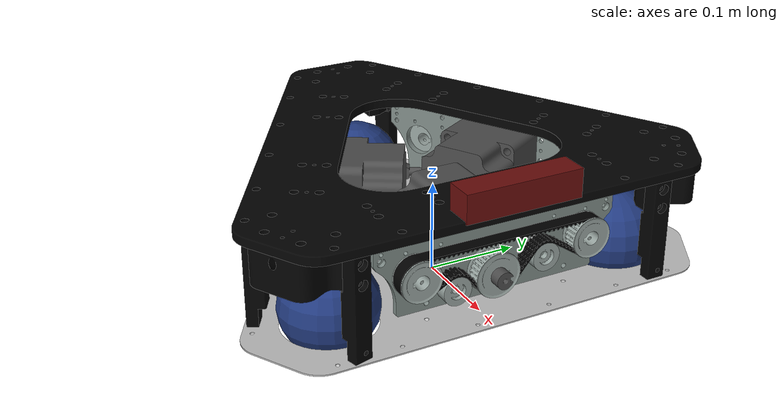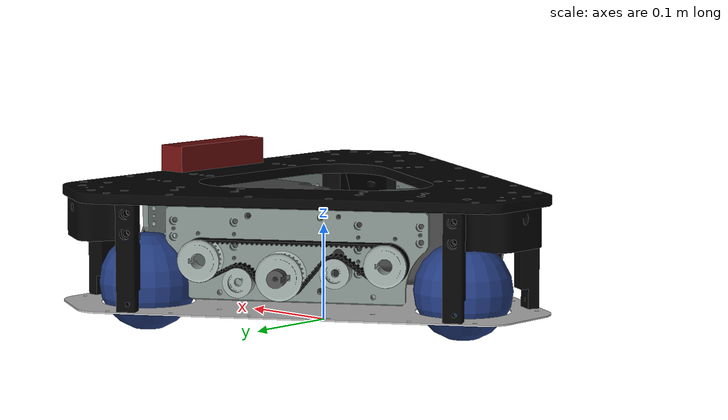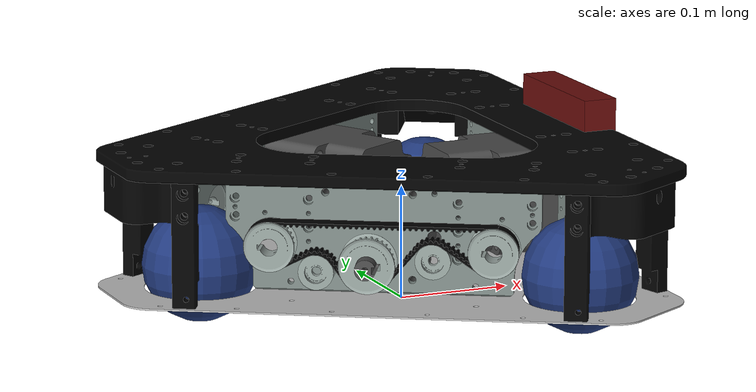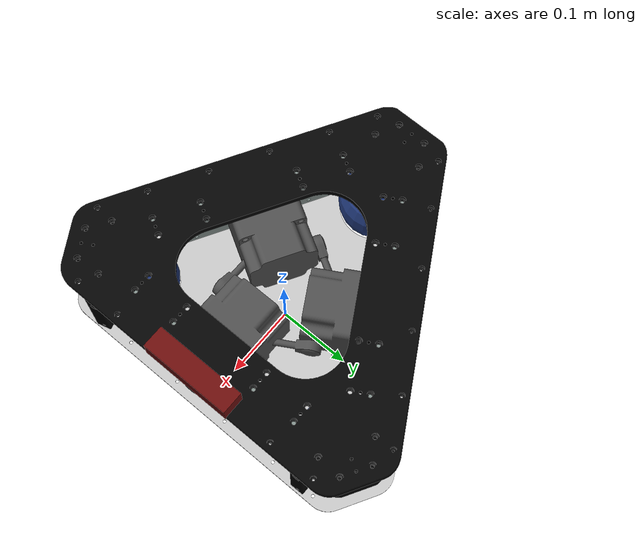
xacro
<?xml version="1.0" ?>
<robot name="TriOrb300P100" xmlns:xacro="http://ros.org/wiki/xacro">

  <xacro:include filename="$(find warehouse_robot_sim)/urdf/oakd.urdf.xacro"/>
  <xacro:include filename="$(find warehouse_robot_sim)/urdf/omni_controller.urdf.xacro" />

<link name="base_link">

</link>
  <link name="robot_base">
    <inertial>
      <origin xyz="0 0 0" rpy="0 0 0"/>
      <mass value="1.0"/>
      <inertia ixx="1.0" ixy="0.0" ixz="0.0" iyy="1.0" iyz="0.0" izz="1.0"/>
    </inertial>
    <visual name="TriOrb300P100_UnderPlate_visual">
        <origin xyz="0.0 0.0 0.0" rpy="0.0 0.0 0.0" />
        <geometry>
            <mesh filename="file://$(find warehouse_robot_sim)/meshes/TriOrb300P100_UnderPlate.stl" scale="0.001 0.001 0.001" />
        </geometry>
        <material name="sus">
            <color rgba="0.753 0.753 0.753 1.0"/>
        </material>
    </visual>
    <collision name="TriOrb300P100_UnderPlate_collision">
        <origin xyz="0.0 0.0 0.0" rpy="0.0 0.0 0.0" />
        <geometry>
            <mesh filename="file://$(find warehouse_robot_sim)/meshes/TriOrb300P100_UnderPlate.stl" scale="0.001 0.001 0.001" />
        </geometry>
    </collision>
  </link>

<joint name="base_joint" type="fixed">
    <origin xyz="0.0 0.0 0.0" rpy="0.0 0.0 1.57"/>
    <parent link="base_link"/>
    <child link="robot_base"/>
 </joint>

  <link name="TriOrb300P100_TopPlate">
    <inertial>
        <origin xyz="1.5137191669958588e-13 -0.0002619661940188339 0.14268613534243857" rpy="0.0 -0.0 0.0" />
        <mass value="8.182272397574748" />
        <inertia ixx="0.13232877336076157" iyy="0.13289875477595392" izz="0.2650914872635593" ixy="4.4043453928310243e-14" iyz="5.610845970076186e-08" ixz="7.989679922409314e-17" />
    </inertial>
    <visual name="TriOrb300P100_TopPlate_visual">
        <origin xyz="0.0 0.0 0.0" rpy="0.0 -0.0 0.0" />
        <geometry>
            <mesh filename="file://$(find warehouse_robot_sim)/meshes/TriOrb300P100_TopPlate.stl" scale="0.001 0.001 0.001" />
        </geometry>
        <material name="dark_gray">
            <color rgba="0.01 0.01 0.01 1.0"/>
        </material>
    </visual>
    <collision name="TriOrb300P100_TopPlate_collision">
        <origin xyz="0.0 0.0 0.0" rpy="0.0 -0.0 0.0" />
        <geometry>
            <mesh filename="file://$(find warehouse_robot_sim)/meshes/TriOrb300P100_TopPlate.stl" scale="0.001 0.001 0.001" />
        </geometry>
    </collision>
  </link>

  <joint name="TriOrb300P100_TopPlate_joint" type="fixed">
    <parent link="robot_base"/>
    <child link="TriOrb300P100_TopPlate"/>
    <origin xyz="0 0 0" rpy="0 0 0"/>
  </joint>

  <link name="TriOrb300P100_Ball100_1">
    <inertial>
        <origin xyz="0 0 0" rpy="0 0 0" />
        <mass value="0.01" />
        <inertia ixx="0.0001" ixy="0.0" ixz="0.0" iyy="0.0001" iyz="0.0" izz="0.0001" />
    </inertial>
    <visual>
        <geometry>
            <sphere radius="0.05"/>
        </geometry>
        <origin xyz="0 0.187 0.05" rpy="0 0 0"/>
        <material name="triorb_blue">
            <color rgba="0.1333333333333333 0.2313725490196078 0.5019607843137255 1.0"/>
        </material>
    </visual>
    <collision>
        <geometry>
            <sphere radius="0.05"/>
        </geometry>
        <origin xyz="0 0.187 0.05" rpy="0 0 0"/>
    </collision>
  </link>

  <joint name="TriOrb300P100_Ball100_1_joint" type="fixed">
    <parent link="robot_base"/>
    <child link="TriOrb300P100_Ball100_1"/>
    <origin xyz="0 0 0" rpy="0 0 0"/>
  </joint>

  <link name="TriOrb300P100_Ball100_2">
    <inertial>
        <origin xyz="0 0 0" rpy="0 0 0" />
        <mass value="0.01" />
        <inertia ixx="0.0001" ixy="0.0" ixz="0.0" iyy="0.0001" iyz="0.0" izz="0.0001" />
    </inertial>
    <visual>
        <geometry>
            <sphere radius="0.05"/>
        </geometry>
        <origin xyz="0.162 -0.094 0.05" rpy="0 0 0"/>
        <material name="triorb_blue">
            <color rgba="0.1333333333333333 0.2313725490196078 0.5019607843137255 1.0"/>
        </material>
    </visual>
    <collision>
        <geometry>
            <sphere radius="0.05"/>
        </geometry>
        <origin xyz="0.162 -0.094 0.05" rpy="0 0 0"/>
    </collision>
  </link>

  <link name="TriOrb300P100_Ball100_3">
    <inertial>
        <origin xyz="0 0 0" rpy="0 0 0" />
        <mass value="0.01" />
        <inertia ixx="0.0001" ixy="0.0" ixz="0.0" iyy="0.0001" iyz="0.0" izz="0.0001" />
    </inertial>
    <visual>
        <geometry>
            <sphere radius="0.05"/>
        </geometry>
        <origin xyz="-0.162 -0.094 0.05" rpy="0 0 0"/>
        <material name="triorb_blue">
            <color rgba="0.1333333333333333 0.2313725490196078 0.5019607843137255 1.0"/>
        </material>
    </visual>
    <collision>
        <geometry>
            <sphere radius="0.05"/>
        </geometry>
        <origin xyz="-0.162 -0.094 0.05" rpy="0 0 0"/>
    </collision>
  </link>

  <joint name="TriOrb300P100_Ball100_2_joint" type="fixed">
    <parent link="robot_base"/>
    <child link="TriOrb300P100_Ball100_2"/>
    <origin xyz="0 0 0" rpy="0 0 0"/>
  </joint>

  <joint name="TriOrb300P100_Ball100_3_joint" type="fixed">
    <parent link="robot_base"/>
    <child link="TriOrb300P100_Ball100_3"/>
    <origin xyz="0 0 0" rpy="0 0 0"/>
  </joint>

  <link name="TriOrb300P100_PlateA_PlateA-1">
    <inertial>
        <mass value="0.39569212966450507" />
        <inertia ixx="0.0001" ixy="0.0" ixz="0.0" iyy="0.0001" iyz="0.0" izz="0.0001" />
    </inertial>
    <visual name="TriOrb300P100_PlateA_PlateA-1_visual">
        <origin xyz="0.0 -0.131 0.064" rpy="1.5708 0.0 0.0" />
        <geometry>
            <mesh filename="file://$(find warehouse_robot_sim)/meshes/TriOrb300P100_PlateA_PlateA-1.stl" scale="0.001 0.001 0.001" />
        </geometry>
        <material name="aluminum">
            <color rgba="0.5 0.5490196078431373 0.5333333333333333 1.0"/>
        </material>
    </visual>
    <collision name="TriOrb300P100_PlateA_PlateA-1_collision">
        <origin xyz="0.0 -0.131 0.064" rpy="1.5708 0.0 0.0" />
        <geometry>
            <mesh filename="file://$(find warehouse_robot_sim)/meshes/TriOrb300P100_PlateA_PlateA-1.stl" scale="0.001 0.001 0.001" />
        </geometry>
    </collision>
  </link>

  <joint name="TriOrb300P100_PlateA_PlateA-1_joint" type="fixed">
    <parent link="robot_base"/>
    <child link="TriOrb300P100_PlateA_PlateA-1"/>
    <origin xyz="0 0 0" rpy="0 0 0"/>
  </joint>

  <link name="TriOrb300P100_PlateA_PlateA-2">
    <inertial>
        <mass value="0.39569212966450507" />
        <inertia ixx="0.0001" ixy="0.0" ixz="0.0" iyy="0.0001" iyz="0.0" izz="0.0001" />
    </inertial>
    <visual name="TriOrb300P100_PlateA_PlateA-2_visual">
        <origin xyz="0.115 0.067 0.064" rpy="1.5708 0.0 2.0944" />
        <geometry>
            <mesh filename="file://$(find warehouse_robot_sim)/meshes/TriOrb300P100_PlateA_PlateA-1.stl" scale="0.001 0.001 0.001" />
        </geometry>
        <material name="aluminum">
            <color rgba="0.5 0.5490196078431373 0.5333333333333333 1.0"/>
        </material>
    </visual>
    <collision name="TriOrb300P100_PlateA_PlateA-2_collision">
        <origin xyz="0.115 0.067 0.064" rpy="1.5708 0.0 2.0944" />
        <geometry>
            <mesh filename="file://$(find warehouse_robot_sim)/meshes/TriOrb300P100_PlateA_PlateA-1.stl" scale="0.001 0.001 0.001" />
        </geometry>
    </collision>
  </link>

  <link name="TriOrb300P100_PlateA_PlateA-3">
    <inertial>
        <mass value="0.39569212966450507" />
        <inertia ixx="0.0001" ixy="0.0" ixz="0.0" iyy="0.0001" iyz="0.0" izz="0.0001" />
    </inertial>
    <visual name="TriOrb300P100_PlateA_PlateA-3_visual">
        <origin xyz="-0.115 0.067 0.064" rpy="1.5708 0.0 -2.0944" />
        <geometry>
            <mesh filename="file://$(find warehouse_robot_sim)/meshes/TriOrb300P100_PlateA_PlateA-1.stl" scale="0.001 0.001 0.001" />
        </geometry>
        <material name="aluminum">
            <color rgba="0.5 0.5490196078431373 0.5333333333333333 1.0"/>
        </material>
    </visual>
    <collision name="TriOrb300P100_PlateA_PlateA-3_collision">
        <origin xyz="-0.115 0.067 0.064" rpy="1.5708 0.0 -2.0944" />
        <geometry>
            <mesh filename="file://$(find warehouse_robot_sim)/meshes/TriOrb300P100_PlateA_PlateA-1.stl" scale="0.001 0.001 0.001" />
        </geometry>
    </collision>
  </link>

  <joint name="TriOrb300P100_PlateA_PlateA-2_joint" type="fixed">
    <parent link="robot_base"/>
    <child link="TriOrb300P100_PlateA_PlateA-2"/>
    <origin xyz="0 0 0" rpy="0 0 0"/>
  </joint>

  <joint name="TriOrb300P100_PlateA_PlateA-3_joint" type="fixed">
    <parent link="robot_base"/>
    <child link="TriOrb300P100_PlateA_PlateA-3"/>
    <origin xyz="0 0 0" rpy="0 0 0"/>
  </joint>

  <link name="TriOrb300P100_Casters_BlockC_BlockC1">
        <inertial>
            <origin xyz="0.010662803863432657 -2.8483899861735884e-17 0.017741942156625452" rpy="0.0 0.0 0.0" />
            <mass value="0.3037934076706409" />
            <inertia ixx="0.0002919184975503147" iyy="0.00013238224619031153" izz="0.00034633195984139567" ixy="-1.4393625169522927e-20" iyz="1.6440207248356923e-20" ixz="3.2592310722587975e-06" />
        </inertial>
        <visual name="TriOrb300P100_Casters_BlockC_BlockC1_visual">
            <origin xyz="0.0 0.226 0.138" rpy="0.0 3.1415 -1.5708" />
            <geometry>
                <mesh filename="file://$(find warehouse_robot_sim)/meshes/TriOrb300P100_Casters_BlockC_BlockC1.stl" scale="0.001 0.001 0.001" />
            </geometry>
            <material name="dark_gray">
                <color rgba="0.01 0.01 0.01 1.0"/>
            </material>
        </visual>
        <collision name="TriOrb300P100_Casters_BlockC_BlockC1_collision">
            <origin xyz="0.0 0.226 0.138" rpy="0.0 3.1415 -1.5708" />
            <geometry>
                <mesh filename="file://$(find warehouse_robot_sim)/meshes/TriOrb300P100_Casters_BlockC_BlockC1.stl" scale="0.001 0.001 0.001" />
            </geometry>
        </collision>
  </link>
  <link name="TriOrb300P100_Casters_BlockC_BlockC2">
        <inertial>
            <origin xyz="0.010662803863432657 -2.8483899861735884e-17 0.017741942156625452" rpy="0.0 0.0 0.0" />
            <mass value="0.3037934076706409" />
            <inertia ixx="0.0002919184975503147" iyy="0.00013238224619031153" izz="0.00034633195984139567" ixy="-1.4393625169522927e-20" iyz="1.6440207248356923e-20" ixz="3.2592310722587975e-06" />
        </inertial>
        <visual name="TriOrb300P100_Casters_BlockC_BlockC2_visual">
            <origin xyz="-0.196 -0.113 0.138" rpy="0.0 3.1415 0.521" />
            <geometry>
                <mesh filename="file://$(find warehouse_robot_sim)/meshes/TriOrb300P100_Casters_BlockC_BlockC1.stl" scale="0.001 0.001 0.001" />
            </geometry>
            <material name="dark_gray">
                <color rgba="0.01 0.01 0.01 1.0"/>
            </material>
        </visual>
        <collision name="TriOrb300P100_Casters_BlockC_BlockC2_collision">
            <origin xyz="-0.196 -0.113 0.138" rpy="0.0 3.1415 0.521" />
            <geometry>
                <mesh filename="file://$(find warehouse_robot_sim)/meshes/TriOrb300P100_Casters_BlockC_BlockC1.stl" scale="0.001 0.001 0.001" />
            </geometry>
        </collision>
  </link>
  <link name="TriOrb300P100_Casters_BlockC_BlockC3">
        <inertial>
            <origin xyz="0.010662803863432657 -2.8483899861735884e-17 0.017741942156625452" rpy="0.0 0.0 0.0" />
            <mass value="0.3037934076706409" />
            <inertia ixx="0.0002919184975503147" iyy="0.00013238224619031153" izz="0.00034633195984139567" ixy="-1.4393625169522927e-20" iyz="1.6440207248356923e-20" ixz="3.2592310722587975e-06" />
        </inertial>
        <visual name="TriOrb300P100_Casters_BlockC_BlockC3_visual">
            <origin xyz="0.196 -0.113 0.138" rpy="0.0 3.1415 2.6154" />
            <geometry>
                <mesh filename="file://$(find warehouse_robot_sim)/meshes/TriOrb300P100_Casters_BlockC_BlockC1.stl" scale="0.001 0.001 0.001" />
            </geometry>
            <material name="dark_gray">
                <color rgba="0.01 0.01 0.01 1.0"/>
            </material>
        </visual>
        <collision name="TriOrb300P100_Casters_BlockC_BlockC3_collision">
            <origin xyz="0.196 -0.113 0.138" rpy="0.0 3.1415 2.6154" />
            <geometry>
                <mesh filename="file://$(find warehouse_robot_sim)/meshes/TriOrb300P100_Casters_BlockC_BlockC1.stl" scale="0.001 0.001 0.001" />
            </geometry>
        </collision>
  </link>

  <joint name="TriOrb300P100_Casters_BlockC_BlockC1_joint" type="fixed">
    <parent link="robot_base"/>
    <child link="TriOrb300P100_Casters_BlockC_BlockC1"/>
    <origin xyz="0 0 0" rpy="0 0 0"/>
  </joint>

  <joint name="TriOrb300P100_Casters_BlockC_BlockC2_joint" type="fixed">
    <parent link="robot_base"/>
    <child link="TriOrb300P100_Casters_BlockC_BlockC2"/>
    <origin xyz="0 0 0" rpy="0 0 0"/>
  </joint>

  <joint name="TriOrb300P100_Casters_BlockC_BlockC3_joint" type="fixed">
    <parent link="robot_base"/>
    <child link="TriOrb300P100_Casters_BlockC_BlockC3"/>
    <origin xyz="0 0 0" rpy="0 0 0"/>
  </joint>

  <link name="TriOrb300P100_Casters_BlockC_Pall1a">
        <inertial>
            <origin xyz="-0.0009138193356166049 0.00010427567796962438 0.05387638922345278" rpy="0.0 0.0 0.0" />
            <mass value="0.09445431039982977" />
            <inertia ixx="8.216547802327256e-05" iyy="8.158156698468214e-05" izz="6.046042878379669e-06" ixy="-8.840108730420794e-08" iyz="3.9045571520233006e-07" ixz="8.587293505365966e-07" />
        </inertial>
        <visual name="TriOrb300P100_Casters_BlockC_Pall1a_visual">
            <origin xyz="-0.057 0.222 0.138" rpy="0 3.1415 2.617901" />
            <geometry>
                <mesh filename="file://$(find warehouse_robot_sim)/meshes/TriOrb300P100_Casters_BlockC_Pall.stl" scale="0.001 0.001 0.001" />
            </geometry>
            <material name="dark_gray">
                <color rgba="0.01 0.01 0.01 1.0"/>
            </material>
        </visual>
        <collision name="TriOrb300P100_Casters_BlockC_Pall1a_collision">
            <origin xyz="-0.057 0.222 0.138" rpy="0 3.1415 2.617901" />
            <geometry>
                <mesh filename="file://$(find warehouse_robot_sim)/meshes/TriOrb300P100_Casters_BlockC_Pall.stl" scale="0.001 0.001 0.001" />
            </geometry>
        </collision>
  </link>
  <link name="TriOrb300P100_Casters_BlockC_Pall1b">
        <inertial>
            <origin xyz="-0.0009138193356166049 0.00010427567796962438 0.05387638922345278" rpy="0.0 0.0 0.0" />
            <mass value="0.09445431039982977" />
            <inertia ixx="8.216547802327256e-05" iyy="8.158156698468214e-05" izz="6.046042878379669e-06" ixy="-8.840108730420794e-08" iyz="3.9045571520233006e-07" ixz="8.587293505365966e-07" />
        </inertial>
        <visual name="TriOrb300P100_Casters_BlockC_Pall1b_visual">
            <origin xyz="0.057 0.222 0.138" rpy="0 3.1415 0.523599" />
            <geometry>
                <mesh filename="file://$(find warehouse_robot_sim)/meshes/TriOrb300P100_Casters_BlockC_Pall.stl" scale="0.001 0.001 0.001" />
            </geometry>
            <material name="dark_gray">
                <color rgba="0.01 0.01 0.01 1.0"/>
            </material>
        </visual>
        <collision name="TriOrb300P100_Casters_BlockC_Pall1b_collision">
            <origin xyz="0.057 0.222 0.138" rpy="0 3.1415 0.523599" />
            <geometry>
                <mesh filename="file://$(find warehouse_robot_sim)/meshes/TriOrb300P100_Casters_BlockC_Pall.stl" scale="0.001 0.001 0.001" />
            </geometry>
        </collision>
  </link>
  <link name="TriOrb300P100_Casters_BlockC_Pall2a">
        <inertial>
            <origin xyz="-0.0009138193356166049 0.00010427567796962438 0.05387638922345278" rpy="0.0 0.0 0.0" />
            <mass value="0.09445431039982977" />
            <inertia ixx="8.216547802327256e-05" iyy="8.158156698468214e-05" izz="6.046042878379669e-06" ixy="-8.840108730420794e-08" iyz="3.9045571520233006e-07" ixz="8.587293505365966e-07" />
        </inertial>
        <visual name="TriOrb300P100_Casters_BlockC_Pall2a_visual">
            <origin xyz="0.221 -0.062 0.138" rpy="0 3.1415 0.521" />
            <geometry>
                <mesh filename="file://$(find warehouse_robot_sim)/meshes/TriOrb300P100_Casters_BlockC_Pall.stl" scale="0.001 0.001 0.001" />
            </geometry>
            <material name="dark_gray">
                <color rgba="0.01 0.01 0.01 1.0"/>
            </material>
        </visual>
        <collision name="TriOrb300P100_Casters_BlockC_Pall2a_collision">
            <origin xyz="0.221 -0.062 0.138" rpy="0 3.1415 0.521" />
            <geometry>
                <mesh filename="file://$(find warehouse_robot_sim)/meshes/TriOrb300P100_Casters_BlockC_Pall.stl" scale="0.001 0.001 0.001" />
            </geometry>
        </collision>
  </link>
  <link name="TriOrb300P100_Casters_BlockC_Pall2b">
        <inertial>
            <origin xyz="-0.0009138193356166049 0.00010427567796962438 0.05387638922345278" rpy="0.0 0.0 0.0" />
            <mass value="0.09445431039982977" />
            <inertia ixx="8.216547802327256e-05" iyy="8.158156698468214e-05" izz="6.046042878379669e-06" ixy="-8.840108730420794e-08" iyz="3.9045571520233006e-07" ixz="8.587293505365966e-07" />
        </inertial>
        <visual name="TriOrb300P100_Casters_BlockC_Pall2b_visual">
            <origin xyz="0.164 -0.16 0.138" rpy="0 3.1415 -1.5734" />
            <geometry>
                <mesh filename="file://$(find warehouse_robot_sim)/meshes/TriOrb300P100_Casters_BlockC_Pall.stl" scale="0.001 0.001 0.001" />
            </geometry>
            <material name="dark_gray">
                <color rgba="0.01 0.01 0.01 1.0"/>
            </material>
        </visual>
        <collision name="TriOrb300P100_Casters_BlockC_Pall2b_collision">
            <origin xyz="0.164 -0.16 0.138" rpy="0 3.1415 -1.5734" />
            <geometry>
                <mesh filename="file://$(find warehouse_robot_sim)/meshes/TriOrb300P100_Casters_BlockC_Pall.stl" scale="0.001 0.001 0.001" />
            </geometry>
        </collision>
  </link>
  <link name="TriOrb300P100_Casters_BlockC_Pall3a">
        <inertial>
            <origin xyz="-0.0009138193356166049 0.00010427567796962438 0.05387638922345278" rpy="0.0 0.0 0.0" />
            <mass value="0.09445431039982977" />
            <inertia ixx="8.216547802327256e-05" iyy="8.158156698468214e-05" izz="6.046042878379669e-06" ixy="-8.840108730420794e-08" iyz="3.9045571520233006e-07" ixz="8.587293505365966e-07" />
        </inertial>
        <visual name="TriOrb300P100_Casters_BlockC_Pall3a_visual">
            <origin xyz="-0.221 -0.062 0.138" rpy="0 3.1415 2.6154" />
            <geometry>
                <mesh filename="file://$(find warehouse_robot_sim)/meshes/TriOrb300P100_Casters_BlockC_Pall.stl" scale="0.001 0.001 0.001" />
            </geometry>
            <material name="dark_gray">
                <color rgba="0.01 0.01 0.01 1.0"/>
            </material>
        </visual>
        <collision name="TriOrb300P100_Casters_BlockC_Pall3a_collision">
            <origin xyz="-0.221 -0.062 0.138" rpy="0 3.1415 2.6154" />
            <geometry>
                <mesh filename="file://$(find warehouse_robot_sim)/meshes/TriOrb300P100_Casters_BlockC_Pall.stl" scale="0.001 0.001 0.001" />
            </geometry>
        </collision>
  </link>
  <link name="TriOrb300P100_Casters_BlockC_Pall3b">
        <inertial>
            <origin xyz="-0.0009138193356166049 0.00010427567796962438 0.05387638922345278" rpy="0.0 0.0 0.0" />
            <mass value="0.09445431039982977" />
            <inertia ixx="8.216547802327256e-05" iyy="8.158156698468214e-05" izz="6.046042878379669e-06" ixy="-8.840108730420794e-08" iyz="3.9045571520233006e-07" ixz="8.587293505365966e-07" />
        </inertial>
        <visual name="TriOrb300P100_Casters_BlockC_Pall3b_visual">
            <origin xyz="-0.164 -0.16 0.138" rpy="0 3.1415 4.9715" />
            <geometry>
                <mesh filename="file://$(find warehouse_robot_sim)/meshes/TriOrb300P100_Casters_BlockC_Pall.stl" scale="0.001 0.001 0.001" />
            </geometry>
            <material name="dark_gray">
                <color rgba="0.01 0.01 0.01 1.0"/>
            </material>
        </visual>
        <collision name="TriOrb300P100_Casters_BlockC_Pall3b_collision">
            <origin xyz="-0.164 -0.16 0.138" rpy="0 3.1415 4.9715" />
            <geometry>
                <mesh filename="file://$(find warehouse_robot_sim)/meshes/TriOrb300P100_Casters_BlockC_Pall.stl" scale="0.001 0.001 0.001" />
            </geometry>
        </collision>
  </link>

  <joint name="TriOrb300P100_Casters_BlockC_Pall1a_joint" type="fixed">
    <parent link="robot_base"/>
    <child link="TriOrb300P100_Casters_BlockC_Pall1a"/>
    <origin xyz="0 0 0" rpy="0 0 0"/>
  </joint>

  <joint name="TriOrb300P100_Casters_BlockC_Pall1b_joint" type="fixed">
    <parent link="robot_base"/>
    <child link="TriOrb300P100_Casters_BlockC_Pall1b"/>
    <origin xyz="0 0 0" rpy="0 0 0"/>
  </joint>

  <joint name="TriOrb300P100_Casters_BlockC_Pall2a_joint" type="fixed">
    <parent link="robot_base"/>
    <child link="TriOrb300P100_Casters_BlockC_Pall2a"/>
    <origin xyz="0 0 0" rpy="0 0 0"/>
  </joint>

  <joint name="TriOrb300P100_Casters_BlockC_Pall2b_joint" type="fixed">
    <parent link="robot_base"/>
    <child link="TriOrb300P100_Casters_BlockC_Pall2b"/>
    <origin xyz="0 0 0" rpy="0 0 0"/>
  </joint>

  <joint name="TriOrb300P100_Casters_BlockC_Pall3a_joint" type="fixed">
    <parent link="robot_base"/>
    <child link="TriOrb300P100_Casters_BlockC_Pall3a"/>
    <origin xyz="0 0 0" rpy="0 0 0"/>
  </joint>

  <joint name="TriOrb300P100_Casters_BlockC_Pall3b_joint" type="fixed">
    <parent link="robot_base"/>
    <child link="TriOrb300P100_Casters_BlockC_Pall3b"/>
    <origin xyz="0 0 0" rpy="0 0 0"/>
  </joint>

  <link name="TriOrb300P100_PlateA1_BLMR5100K-10-B_GPA28GT5150-A-N18">
        <inertial>
            <origin xyz="0.009999999934446837 -0.0001927370499699629 8.089620922360257e-05" rpy="0.0 0.0 0.0" />
            <mass value="0.05773775624470509" />
            <inertia ixx="1.5224897860331048e-05" iyy="9.672414746288811e-06" izz="9.510640619889068e-06" ixy="5.053078263698502e-13" iyz="4.348158257922064e-08" ixz="1.4947179560775627e-13" />
        </inertial>
        <visual name="TriOrb300P100_PlateA1_BLMR5100K-10-B_GPA28GT5150-A-N18_visual">
            <origin xyz="-0.012 -0.133 0.07" rpy="0.0 0.0 -1.5708" />
            <geometry>
                <mesh filename="file://$(find warehouse_robot_sim)/meshes/TriOrb300P100_PlateA_BLMR5100K-10-B_GPA28GT5150-A-N18.stl" scale="0.001 0.001 0.001" />
            </geometry>
            <material name="white_aluminum">
                <color rgba="0.6 0.6490196078431373 0.6333333333333333 1.0"/>
            </material>
        </visual>
        <collision name="TriOrb300P100_PlateA1_BLMR5100K-10-B_GPA28GT5150-A-N18_collision">
            <origin xyz="-0.012 -0.133 0.07" rpy="0.0 0.0 -1.5708" />
            <geometry>
                <mesh filename="file://$(find warehouse_robot_sim)/meshes/TriOrb300P100_PlateA_BLMR5100K-10-B_GPA28GT5150-A-N18.stl" scale="0.001 0.001 0.001" />
            </geometry>
        </collision>
  </link>
  <link name="TriOrb300P100_PlateA1_BLMR5100K-10-B_Motor">
        <inertial>
            <origin xyz="-0.04613153705954926 -0.017631706545809204 -0.0008352275048383043" rpy="0.0 0.0 0.0" />
            <mass value="2.007074987745727" />
            <inertia ixx="0.0024825828715982798" iyy="0.0029647265439736326" izz="0.0028936846696210753" ixy="-4.448636179875564e-05" iyz="-4.4694075834786606e-07" ixz="-7.745663519388172e-05" />
        </inertial>
        <visual name="TriOrb300P100_PlateA1_BLMR5100K-10-B_Motor_visual">
            <origin xyz="-0.012 -0.123 0.07" rpy="-1.5708 0.0 -1.5708" />
            <geometry>
                <mesh filename="file://$(find warehouse_robot_sim)/meshes/TriOrb300P100_PlateA_BLMR5100K-10-B_Motor.stl" scale="0.001 0.001 0.001" />
            </geometry>
            <material name="light_gray">
                <color rgba="0.3 0.3 0.3 1.0"/>
            </material>
        </visual>
        <collision name="TriOrb300P100_PlateA1_BLMR5100K-10-B_Motor_collision">
            <origin xyz="-0.012 -0.123 0.07" rpy="-1.5708 0.0 -1.5708" />
            <geometry>
                <mesh filename="file://$(find warehouse_robot_sim)/meshes/TriOrb300P100_PlateA_BLMR5100K-10-B_Motor.stl" scale="0.001 0.001 0.001" />
            </geometry>
        </collision>
  </link>
  <link name="TriOrb300P100_PlateA2_BLMR5100K-10-B_GPA28GT5150-A-N18">
        <inertial>
            <origin xyz="0.009999999934446837 -0.0001927370499699629 8.089620922360257e-05" rpy="0.0 0.0 0.0" />
            <mass value="0.05773775624470509" />
            <inertia ixx="1.5224897860331048e-05" iyy="9.672414746288811e-06" izz="9.510640619889068e-06" ixy="5.053078263698502e-13" iyz="4.348158257922064e-08" ixz="1.4947179560775627e-13" />
        </inertial>
        <visual name="TriOrb300P100_PlateA2_BLMR5100K-10-B_GPA28GT5150-A-N18_visual">
            <origin xyz="0.123 0.057 0.067" rpy="0.0 0.0 0.523599" />
            <geometry>
                <mesh filename="file://$(find warehouse_robot_sim)/meshes/TriOrb300P100_PlateA_BLMR5100K-10-B_GPA28GT5150-A-N18.stl" scale="0.001 0.001 0.001" />
            </geometry>
            <material name="white_aluminum">
                <color rgba="0.6 0.6490196078431373 0.6333333333333333 1.0"/>
            </material>
        </visual>
        <collision name="TriOrb300P100_PlateA2_BLMR5100K-10-B_GPA28GT5150-A-N18_collision">
            <origin xyz="0.123 0.057 0.067" rpy="0.0 0.0 0.523599" />
            <geometry>
                <mesh filename="file://$(find warehouse_robot_sim)/meshes/TriOrb300P100_PlateA_BLMR5100K-10-B_GPA28GT5150-A-N18.stl" scale="0.001 0.001 0.001" />
            </geometry>
        </collision>
  </link>
  <link name="TriOrb300P100_PlateA2_BLMR5100K-10-B_Motor">
        <inertial>
            <origin xyz="-0.04613153705954926 -0.017631706545809204 -0.0008352275048383043" rpy="0.0 0.0 0.0" />
            <mass value="2.007074987745727" />
            <inertia ixx="0.0024825828715982798" iyy="0.0029647265439736326" izz="0.0028936846696210753" ixy="-4.448636179875564e-05" iyz="-4.4694075834786606e-07" ixz="-7.745663519388172e-05" />
        </inertial>
        <visual name="TriOrb300P100_PlateA2_BLMR5100K-10-B_Motor_visual">
            <origin xyz="0.115 0.052 0.067" rpy="-1.5708 0.0 0.523599" />
            <geometry>
                <mesh filename="file://$(find warehouse_robot_sim)/meshes/TriOrb300P100_PlateA_BLMR5100K-10-B_Motor.stl" scale="0.001 0.001 0.001" />
            </geometry>
            <material name="light_gray">
                <color rgba="0.3 0.3 0.3 1.0"/>
            </material>
        </visual>
        <collision name="TriOrb300P100_PlateA2_BLMR5100K-10-B_Motor_collision">
            <origin xyz="0.115 0.052 0.067" rpy="-1.5708 0.0 0.523599" />
            <geometry>
                <mesh filename="file://$(find warehouse_robot_sim)/meshes/TriOrb300P100_PlateA_BLMR5100K-10-B_Motor.stl" scale="0.001 0.001 0.001" />
            </geometry>
        </collision>
  </link>
  <link name="TriOrb300P100_PlateA3_BLMR5100K-10-B_GPA28GT5150-A-N18">
        <inertial>
            <origin xyz="0.009999999934446837 -0.0001927370499699629 8.089620922360257e-05" rpy="0.0 0.0 0.0" />
            <mass value="0.05773775624470509" />
            <inertia ixx="1.5224897860331048e-05" iyy="9.672414746288811e-06" izz="9.510640619889068e-06" ixy="5.053078263698502e-13" iyz="4.348158257922064e-08" ixz="1.4947179560775627e-13" />
        </inertial>
        <visual name="TriOrb300P100_PlateA3_BLMR5100K-10-B_GPA28GT5150-A-N18_visual">
            <origin xyz="-0.111 0.078 0.067" rpy="0.0 0.0 2.61799" />
            <geometry>
                <mesh filename="file://$(find warehouse_robot_sim)/meshes/TriOrb300P100_PlateA_BLMR5100K-10-B_GPA28GT5150-A-N18.stl" scale="0.001 0.001 0.001" />
            </geometry>
            <material name="white_aluminum">
                <color rgba="0.6 0.6490196078431373 0.6333333333333333 1.0"/>
            </material>
        </visual>
        <collision name="TriOrb300P100_PlateA3_BLMR5100K-10-B_GPA28GT5150-A-N18_collision">
            <origin xyz="-0.111 0.078 0.067" rpy="0.0 0.0 2.61799" />
            <geometry>
                <mesh filename="file://$(find warehouse_robot_sim)/meshes/TriOrb300P100_PlateA_BLMR5100K-10-B_GPA28GT5150-A-N18.stl" scale="0.001 0.001 0.001" />
            </geometry>
        </collision>
  </link>
  <link name="TriOrb300P100_PlateA3_BLMR5100K-10-B_Motor">
        <inertial>
            <origin xyz="-0.04613153705954926 -0.017631706545809204 -0.0008352275048383043" rpy="0.0 0.0 0.0" />
            <mass value="2.007074987745727" />
            <inertia ixx="0.0024825828715982798" iyy="0.0029647265439736326" izz="0.0028936846696210753" ixy="-4.448636179875564e-05" iyz="-4.4694075834786606e-07" ixz="-7.745663519388172e-05" />
        </inertial>
        <visual name="TriOrb300P100_PlateA3_BLMR5100K-10-B_Motor_visual">
            <origin xyz="-0.103 0.073 0.067" rpy="-1.5708 0.0 2.61799" />
            <geometry>
                <mesh filename="file://$(find warehouse_robot_sim)/meshes/TriOrb300P100_PlateA_BLMR5100K-10-B_Motor.stl" scale="0.001 0.001 0.001" />
            </geometry>
            <material name="light_gray">
                <color rgba="0.3 0.3 0.3 1.0"/>
            </material>
        </visual>
        <collision name="TriOrb300P100_PlateA3_BLMR5100K-10-B_Motor_collision">
            <origin xyz="-0.103 0.073 0.067" rpy="-1.5708 0.0 2.61799" />
            <geometry>
                <mesh filename="file://$(find warehouse_robot_sim)/meshes/TriOrb300P100_PlateA_BLMR5100K-10-B_Motor.stl" scale="0.001 0.001 0.001" />
            </geometry>
        </collision>
  </link>

  <joint name="TriOrb300P100_PlateA1_BLMR5100K-10-B_GPA28GT5150-A-N18_joint" type="fixed">
    <parent link="robot_base"/>
    <child link="TriOrb300P100_PlateA1_BLMR5100K-10-B_GPA28GT5150-A-N18"/>
    <origin xyz="0 0 0" rpy="0 0 0"/>
  </joint>

  <joint name="TriOrb300P100_PlateA1_BLMR5100K-10-B_Motor_joint" type="fixed">
    <parent link="robot_base"/>
    <child link="TriOrb300P100_PlateA1_BLMR5100K-10-B_Motor"/>
    <origin xyz="0 0 0" rpy="0 0 0"/>
  </joint>

  <joint name="TriOrb300P100_PlateA2_BLMR5100K-10-B_GPA28GT5150-A-N18_joint" type="fixed">
    <parent link="robot_base"/>
    <child link="TriOrb300P100_PlateA2_BLMR5100K-10-B_GPA28GT5150-A-N18"/>
    <origin xyz="0 0 0" rpy="0 0 0"/>
  </joint>

  <joint name="TriOrb300P100_PlateA2_BLMR5100K-10-B_Motor_joint" type="fixed">
    <parent link="robot_base"/>
    <child link="TriOrb300P100_PlateA2_BLMR5100K-10-B_Motor"/>
    <origin xyz="0 0 0" rpy="0 0 0"/>
  </joint>

  <joint name="TriOrb300P100_PlateA3_BLMR5100K-10-B_GPA28GT5150-A-N18_joint" type="fixed">
    <parent link="robot_base"/>
    <child link="TriOrb300P100_PlateA3_BLMR5100K-10-B_GPA28GT5150-A-N18"/>
    <origin xyz="0 0 0" rpy="0 0 0"/>
  </joint>

  <joint name="TriOrb300P100_PlateA3_BLMR5100K-10-B_Motor_joint" type="fixed">
    <parent link="robot_base"/>
    <child link="TriOrb300P100_PlateA3_BLMR5100K-10-B_Motor"/>
    <origin xyz="0 0 0" rpy="0 0 0"/>
  </joint>

  <link name="TriOrb300P100_PlateA1_Belt">
        <inertial>
            <origin xyz="0.0031002814166550406 0.02446503266755428 0.012000000000000233" rpy="0.0 0.0 0.0" />
            <mass value="0.017470501777294277" />
            <inertia ixx="4.716218533844237e-06" iyy="7.602010311851502e-05" izz="8.008117783571058e-05" ixy="-8.79800291216877e-07" iyz="-1.2669117089689348e-19" ixz="-1.8712941054663708e-19" />
        </inertial>
        <visual name="TriOrb300P100_PlateA1_Belt_visual">
            <origin xyz="0.0 -0.131 0.064" rpy="1.5708 0.0 0.0" />
            <geometry>
                <mesh filename="file://$(find warehouse_robot_sim)/meshes/TriOrb300P100_PlateA_Belt.stl" scale="0.001 0.001 0.001" />
            </geometry>
            <material name="black">
                <color rgba="0 0 0 1.0"/>
            </material>
        </visual>
        <collision name="TriOrb300P100_PlateA1_Belt_collision">
            <origin xyz="0.0 -0.131 0.064" rpy="1.5708 0.0 0.0" />
            <geometry>
                <mesh filename="file://$(find warehouse_robot_sim)/meshes/TriOrb300P100_PlateA_Belt.stl" scale="0.001 0.001 0.001" />
            </geometry>
        </collision>
  </link>
  <link name="TriOrb300P100_PlateA2_Belt">
        <inertial>
            <origin xyz="0.0031002814166550406 0.02446503266755428 0.012000000000000233" rpy="0.0 0.0 0.0" />
            <mass value="0.017470501777294277" />
            <inertia ixx="4.716218533844237e-06" iyy="7.602010311851502e-05" izz="8.008117783571058e-05" ixy="-8.79800291216877e-07" iyz="-1.2669117089689348e-19" ixz="-1.8712941054663708e-19" />
        </inertial>
        <visual name="TriOrb300P100_PlateA2_Belt_visual">
            <origin xyz="0.115 0.067 0.061" rpy="1.5708 0.0 2.0944" />
            <geometry>
                <mesh filename="file://$(find warehouse_robot_sim)/meshes/TriOrb300P100_PlateA_Belt.stl" scale="0.001 0.001 0.001" />
            </geometry>
            <material name="black">
                <color rgba="0 0 0 1.0"/>
            </material>
        </visual>
        <collision name="TriOrb300P100_PlateA2_Belt_collision">
            <origin xyz="0.115 0.067 0.061" rpy="1.5708 0.0 2.0944" />
            <geometry>
                <mesh filename="file://$(find warehouse_robot_sim)/meshes/TriOrb300P100_PlateA_Belt.stl" scale="0.001 0.001 0.001" />
            </geometry>
        </collision>
  </link>
  <link name="TriOrb300P100_PlateA3_Belt">
        <inertial>
            <origin xyz="0.0031002814166550406 0.02446503266755428 0.012000000000000233" rpy="0.0 0.0 0.0" />
            <mass value="0.017470501777294277" />
            <inertia ixx="4.716218533844237e-06" iyy="7.602010311851502e-05" izz="8.008117783571058e-05" ixy="-8.79800291216877e-07" iyz="-1.2669117089689348e-19" ixz="-1.8712941054663708e-19" />
        </inertial>
        <visual name="TriOrb300P100_PlateA3_Belt_visual">
            <origin xyz="-0.115 0.067 0.061" rpy="1.5708 0.0 -2.0944" />
            <geometry>
                <mesh filename="file://$(find warehouse_robot_sim)/meshes/TriOrb300P100_PlateA_Belt.stl" scale="0.001 0.001 0.001" />
            </geometry>
            <material name="black">
                <color rgba="0 0 0 1.0"/>
            </material>
        </visual>
        <collision name="TriOrb300P100_PlateA3_Belt_collision">
            <origin xyz="-0.115 0.067 0.061" rpy="1.5708 0.0 -2.0944" />
            <geometry>
                <mesh filename="file://$(find warehouse_robot_sim)/meshes/TriOrb300P100_PlateA_Belt.stl" scale="0.001 0.001 0.001" />
            </geometry>
        </collision>
  </link>

  <joint name="TriOrb300P100_PlateA1_Belt_joint" type="fixed">
    <parent link="robot_base"/>
    <child link="TriOrb300P100_PlateA1_Belt"/>
    <origin xyz="0 0 0" rpy="0 0 0"/>
  </joint>

  <joint name="TriOrb300P100_PlateA2_Belt_joint" type="fixed">
    <parent link="robot_base"/>
    <child link="TriOrb300P100_PlateA2_Belt"/>
    <origin xyz="0 0 0" rpy="0 0 0"/>
  </joint>

  <joint name="TriOrb300P100_PlateA3_Belt_joint" type="fixed">
    <parent link="robot_base"/>
    <child link="TriOrb300P100_PlateA3_Belt"/>
    <origin xyz="0 0 0" rpy="0 0 0"/>
  </joint>

  <link name="TriOrb300P100_PlateA1_Axis1_GPA25GT5150-A-N15">
        <inertial>
            <origin xyz="0.009999999617111299 -0.0001431903815225448 7.907258825659985e-05" rpy="0.0 0.0 0.0" />
            <mass value="0.046523838967653185" />
            <inertia ixx="9.47370294796934e-06" iyy="6.3914564292359494e-06" izz="6.2981125007781225e-06" ixy="3.006470661188208e-13" iyz="3.058616013977606e-08" ixz="-3.230832310485068e-14" />
        </inertial>
        <visual name="TriOrb300P100_PlateA1_Axis1_GPA25GT5150-A-N15_visual">
            <origin xyz="-0.094 -0.153 0.084" rpy="0.0 0.0 1.5708" />
            <geometry>
                <mesh filename="file://$(find warehouse_robot_sim)/meshes/TriOrb300P100_PlateA_Axis_GPA25GT5150-A-N15.stl" scale="0.001 0.001 0.001" />
            </geometry>
            <material name="white_aluminum">
                <color rgba="0.6 0.6490196078431373 0.6333333333333333 1.0"/>
            </material>
        </visual>
        <collision name="TriOrb300P100_PlateA1_Axis1_GPA25GT5150-A-N15_collision">
            <origin xyz="-0.094 -0.153 0.084" rpy="0.0 0.0 1.5708" />
            <geometry>
                <mesh filename="file://$(find warehouse_robot_sim)/meshes/TriOrb300P100_PlateA_Axis_GPA25GT5150-A-N15.stl" scale="0.001 0.001 0.001" />
            </geometry>
        </collision>
  </link>
  <link name="TriOrb300P100_PlateA1_Axis2_GPA25GT5150-A-N15">
        <inertial>
            <origin xyz="0.009999999617111299 -0.0001431903815225448 7.907258825659985e-05" rpy="0.0 0.0 0.0" />
            <mass value="0.046523838967653185" />
            <inertia ixx="9.47370294796934e-06" iyy="6.3914564292359494e-06" izz="6.2981125007781225e-06" ixy="3.006470661188208e-13" iyz="3.058616013977606e-08" ixz="-3.230832310485068e-14" />
        </inertial>
        <visual name="TriOrb300P100_PlateA1_Axis2_GPA25GT5150-A-N15_visual">
            <origin xyz="0.094 -0.153 0.084" rpy="0.0 0.0 1.5708" />
            <geometry>
                <mesh filename="file://$(find warehouse_robot_sim)/meshes/TriOrb300P100_PlateA_Axis_GPA25GT5150-A-N15.stl" scale="0.001 0.001 0.001" />
            </geometry>
            <material name="white_aluminum">
                <color rgba="0.6 0.6490196078431373 0.6333333333333333 1.0"/>
            </material>
        </visual>
        <collision name="TriOrb300P100_PlateA1_Axis2_GPA25GT5150-A-N15_collision">
            <origin xyz="0.094 -0.153 0.084" rpy="0.0 0.0 1.5708" />
            <geometry>
                <mesh filename="file://$(find warehouse_robot_sim)/meshes/TriOrb300P100_PlateA_Axis_GPA25GT5150-A-N15.stl" scale="0.001 0.001 0.001" />
            </geometry>
        </collision>
  </link>
  <link name="TriOrb300P100_PlateA2_Axis1_GPA25GT5150-A-N15">
        <inertial>
            <origin xyz="0.009999999617111299 -0.0001431903815225448 7.907258825659985e-05" rpy="0.0 0.0 0.0" />
            <mass value="0.046523838967653185" />
            <inertia ixx="9.47370294796934e-06" iyy="6.3914564292359494e-06" izz="6.2981125007781225e-06" ixy="3.006470661188208e-13" iyz="3.058616013977606e-08" ixz="-3.230832310485068e-14" />
        </inertial>
        <visual name="TriOrb300P100_PlateA2_Axis1_GPA25GT5150-A-N15_visual">
            <origin xyz="-0.087 0.159 0.081" rpy="0.0 0.0 -0.523599" />
            <geometry>
                <mesh filename="file://$(find warehouse_robot_sim)/meshes/TriOrb300P100_PlateA_Axis_GPA25GT5150-A-N15.stl" scale="0.001 0.001 0.001" />
            </geometry>
            <material name="white_aluminum">
                <color rgba="0.6 0.6490196078431373 0.6333333333333333 1.0"/>
            </material>
        </visual>
        <collision name="TriOrb300P100_PlateA2_Axis1_GPA25GT5150-A-N15_collision">
            <origin xyz="-0.087 0.159 0.081" rpy="0.0 0.0 -0.523599" />
            <geometry>
                <mesh filename="file://$(find warehouse_robot_sim)/meshes/TriOrb300P100_PlateA_Axis_GPA25GT5150-A-N15.stl" scale="0.001 0.001 0.001" />
            </geometry>
        </collision>
  </link>
  <link name="TriOrb300P100_PlateA2_Axis2_GPA25GT5150-A-N15">
        <inertial>
            <origin xyz="0.009999999617111299 -0.0001431903815225448 7.907258825659985e-05" rpy="0.0 0.0 0.0" />
            <mass value="0.046523838967653185" />
            <inertia ixx="9.47370294796934e-06" iyy="6.3914564292359494e-06" izz="6.2981125007781225e-06" ixy="3.006470661188208e-13" iyz="3.058616013977606e-08" ixz="-3.230832310485068e-14" />
        </inertial>
        <visual name="TriOrb300P100_PlateA2_Axis2_GPA25GT5150-A-N15_visual">
            <origin xyz="-0.181 -0.004 0.081" rpy="0.0 0.0 -0.523599" />
            <geometry>
                <mesh filename="file://$(find warehouse_robot_sim)/meshes/TriOrb300P100_PlateA_Axis_GPA25GT5150-A-N15.stl" scale="0.001 0.001 0.001" />
            </geometry>
            <material name="white_aluminum">
                <color rgba="0.6 0.6490196078431373 0.6333333333333333 1.0"/>
            </material>
        </visual>
        <collision name="TriOrb300P100_PlateA2_Axis2_GPA25GT5150-A-N15_collision">
            <origin xyz="-0.181 -0.004 0.081" rpy="0.0 0.0 -0.523599" />
            <geometry>
                <mesh filename="file://$(find warehouse_robot_sim)/meshes/TriOrb300P100_PlateA_Axis_GPA25GT5150-A-N15.stl" scale="0.001 0.001 0.001" />
            </geometry>
        </collision>
  </link>
  <link name="TriOrb300P100_PlateA3_Axis1_GPA25GT5150-A-N15">
        <inertial>
            <origin xyz="0.009999999617111299 -0.0001431903815225448 7.907258825659985e-05" rpy="0.0 0.0 0.0" />
            <mass value="0.046523838967653185" />
            <inertia ixx="9.47370294796934e-06" iyy="6.3914564292359494e-06" izz="6.2981125007781225e-06" ixy="3.006470661188208e-13" iyz="3.058616013977606e-08" ixz="-3.230832310485068e-14" />
        </inertial>
        <visual name="TriOrb300P100_PlateA3_Axis1_GPA25GT5150-A-N15_visual">
            <origin xyz="0.087 0.159 0.081" rpy="0.0 0.0 -2.61799" />
            <geometry>
                <mesh filename="file://$(find warehouse_robot_sim)/meshes/TriOrb300P100_PlateA_Axis_GPA25GT5150-A-N15.stl" scale="0.001 0.001 0.001" />
            </geometry>
            <material name="white_aluminum">
                <color rgba="0.6 0.6490196078431373 0.6333333333333333 1.0"/>
            </material>
        </visual>
        <collision name="TriOrb300P100_PlateA3_Axis1_GPA25GT5150-A-N15_collision">
            <origin xyz="0.087 0.159 0.081" rpy="0.0 0.0 -2.61799" />
            <geometry>
                <mesh filename="file://$(find warehouse_robot_sim)/meshes/TriOrb300P100_PlateA_Axis_GPA25GT5150-A-N15.stl" scale="0.001 0.001 0.001" />
            </geometry>
        </collision>
  </link>
  <link name="TriOrb300P100_PlateA3_Axis2_GPA25GT5150-A-N15">
        <inertial>
            <origin xyz="0.009999999617111299 -0.0001431903815225448 7.907258825659985e-05" rpy="0.0 0.0 0.0" />
            <mass value="0.046523838967653185" />
            <inertia ixx="9.47370294796934e-06" iyy="6.3914564292359494e-06" izz="6.2981125007781225e-06" ixy="3.006470661188208e-13" iyz="3.058616013977606e-08" ixz="-3.230832310485068e-14" />
        </inertial>
        <visual name="TriOrb300P100_PlateA3_Axis2_GPA25GT5150-A-N15_visual">
            <origin xyz="0.181 -0.004 0.081" rpy="0.0 0.0 -2.61799" />
            <geometry>
                <mesh filename="file://$(find warehouse_robot_sim)/meshes/TriOrb300P100_PlateA_Axis_GPA25GT5150-A-N15.stl" scale="0.001 0.001 0.001" />
            </geometry>
            <material name="white_aluminum">
                <color rgba="0.6 0.6490196078431373 0.6333333333333333 1.0"/>
            </material>
        </visual>
        <collision name="TriOrb300P100_PlateA3_Axis2_GPA25GT5150-A-N15_collision">
            <origin xyz="0.181 -0.004 0.081" rpy="0.0 0.0 -2.61799" />
            <geometry>
                <mesh filename="file://$(find warehouse_robot_sim)/meshes/TriOrb300P100_PlateA_Axis_GPA25GT5150-A-N15.stl" scale="0.001 0.001 0.001" />
            </geometry>
        </collision>
  </link>

  <joint name="TriOrb300P100_PlateA1_Axis1_GPA25GT5150-A-N15_joint" type="fixed">
    <parent link="robot_base"/>
    <child link="TriOrb300P100_PlateA1_Axis1_GPA25GT5150-A-N15"/>
    <origin xyz="0 0 0" rpy="0 0 0"/>
  </joint>

  <joint name="TriOrb300P100_PlateA1_Axis2_GPA25GT5150-A-N15_joint" type="fixed">
    <parent link="robot_base"/>
    <child link="TriOrb300P100_PlateA1_Axis2_GPA25GT5150-A-N15"/>
    <origin xyz="0 0 0" rpy="0 0 0"/>
  </joint>

  <joint name="TriOrb300P100_PlateA2_Axis1_GPA25GT5150-A-N15_joint" type="fixed">
    <parent link="robot_base"/>
    <child link="TriOrb300P100_PlateA2_Axis1_GPA25GT5150-A-N15"/>
    <origin xyz="0 0 0" rpy="0 0 0"/>
  </joint>

  <joint name="TriOrb300P100_PlateA2_Axis2_GPA25GT5150-A-N15_joint" type="fixed">
    <parent link="robot_base"/>
    <child link="TriOrb300P100_PlateA2_Axis2_GPA25GT5150-A-N15"/>
    <origin xyz="0 0 0" rpy="0 0 0"/>
  </joint>

  <joint name="TriOrb300P100_PlateA3_Axis1_GPA25GT5150-A-N15_joint" type="fixed">
    <parent link="robot_base"/>
    <child link="TriOrb300P100_PlateA3_Axis1_GPA25GT5150-A-N15"/>
    <origin xyz="0 0 0" rpy="0 0 0"/>
  </joint>

  <joint name="TriOrb300P100_PlateA3_Axis2_GPA25GT5150-A-N15_joint" type="fixed">
    <parent link="robot_base"/>
    <child link="TriOrb300P100_PlateA3_Axis2_GPA25GT5150-A-N15"/>
    <origin xyz="0 0 0" rpy="0 0 0"/>
  </joint>

  <link name="TriOrb300P100_PlateA1_Idlar1_AFBD15-30">
        <inertial>
            <origin xyz="-0.00018487901658469143 -1.9239858641461598e-19 -3.22141594425942e-14" rpy="0.0 0.0 0.0" />
            <mass value="0.0630726339168954" />
            <inertia ixx="8.765578479758061e-06" iyy="5.423870039075133e-06" izz="5.423870032427239e-06" ixy="3.4776254875991696e-21" iyz="-9.542481581199426e-33" ixz="-9.542277632453373e-18" />
        </inertial>
        <visual name="TriOrb300P100_PlateA1_Idlar1_AFBD15-30_visual">
            <origin xyz="-0.055 -0.143 0.063" rpy="0.0 0.0 1.5708" />
            <geometry>
                <mesh filename="file://$(find warehouse_robot_sim)/meshes/TriOrb300P100_PlateA_Idlar_AFBD15-30.stl" scale="0.001 0.001 0.001" />
            </geometry>
            <material name="white_aluminum">
                <color rgba="0.6 0.6490196078431373 0.6333333333333333 1.0"/>
            </material>
        </visual>
        <collision name="TriOrb300P100_PlateA1_Idlar1_AFBD15-30_collision">
            <origin xyz="-0.055 -0.143 0.063" rpy="0.0 0.0 1.5708" />
            <geometry>
                <mesh filename="file://$(find warehouse_robot_sim)/meshes/TriOrb300P100_PlateA_Idlar_AFBD15-30.stl" scale="0.001 0.001 0.001" />
            </geometry>
        </collision>
  </link>
  <link name="TriOrb300P100_PlateA1_Idlar2_AFBD15-30">
        <inertial>
            <origin xyz="-0.00018487901658469143 -1.9239858641461598e-19 -3.22141594425942e-14" rpy="0.0 0.0 0.0" />
            <mass value="0.0630726339168954" />
            <inertia ixx="8.765578479758061e-06" iyy="5.423870039075133e-06" izz="5.423870032427239e-06" ixy="3.4776254875991696e-21" iyz="-9.542481581199426e-33" ixz="-9.542277632453373e-18" />
        </inertial>
        <visual name="TriOrb300P100_PlateA1_Idlar2_AFBD15-30_visual">
            <origin xyz="0.043 -0.143 0.075" rpy="0.0 0.0 1.5708" />
            <geometry>
                <mesh filename="file://$(find warehouse_robot_sim)/meshes/TriOrb300P100_PlateA_Idlar_AFBD15-30.stl" scale="0.001 0.001 0.001" />
            </geometry>
            <material name="white_aluminum">
                <color rgba="0.6 0.6490196078431373 0.6333333333333333 1.0"/>
            </material>
        </visual>
        <collision name="TriOrb300P100_PlateA1_Idlar2_AFBD15-30_collision">
            <origin xyz="0.043 -0.143 0.075" rpy="0.0 0.0 1.5708" />
            <geometry>
                <mesh filename="file://$(find warehouse_robot_sim)/meshes/TriOrb300P100_PlateA_Idlar_AFBD15-30.stl" scale="0.001 0.001 0.001" />
            </geometry>
        </collision>
  </link>
  <link name="TriOrb300P100_PlateA2_Idlar1_AFBD15-30">
        <inertial>
            <origin xyz="-0.00018487901658469143 -1.9239858641461598e-19 -3.22141594425942e-14" rpy="0.0 0.0 0.0" />
            <mass value="0.0630726339168954" />
            <inertia ixx="8.765578479758061e-06" iyy="5.423870039075133e-06" izz="5.423870032427239e-06" ixy="3.4776254875991696e-21" iyz="-9.542481581199426e-33" ixz="-9.542277632453373e-18" />
        </inertial>
        <visual name="TriOrb300P100_PlateA2_Idlar1_AFBD15-30_visual">
            <origin xyz="0.153 0.025 0.06" rpy="0.0 0.0 0.523599" />
            <geometry>
                <mesh filename="file://$(find warehouse_robot_sim)/meshes/TriOrb300P100_PlateA_Idlar_AFBD15-30.stl" scale="0.001 0.001 0.001" />
            </geometry>
            <material name="white_aluminum">
                <color rgba="0.6 0.6490196078431373 0.6333333333333333 1.0"/>
            </material>
        </visual>
        <collision name="TriOrb300P100_PlateA2_Idlar1_AFBD15-30_collision">
            <origin xyz="0.153 0.025 0.06" rpy="0.0 0.0 0.523599" />
            <geometry>
                <mesh filename="file://$(find warehouse_robot_sim)/meshes/TriOrb300P100_PlateA_Idlar_AFBD15-30.stl" scale="0.001 0.001 0.001" />
            </geometry>
        </collision>
  </link>
  <link name="TriOrb300P100_PlateA2_Idlar2_AFBD15-30">
        <inertial>
            <origin xyz="-0.00018487901658469143 -1.9239858641461598e-19 -3.22141594425942e-14" rpy="0.0 0.0 0.0" />
            <mass value="0.0630726339168954" />
            <inertia ixx="8.765578479758061e-06" iyy="5.423870039075133e-06" izz="5.423870032427239e-06" ixy="3.4776254875991696e-21" iyz="-9.542481581199426e-33" ixz="-9.542277632453373e-18" />
        </inertial>
        <visual name="TriOrb300P100_PlateA2_Idlar2_AFBD15-30_visual">
            <origin xyz="0.104 0.11 0.072" rpy="0.0 0.0 0.523599" />
            <geometry>
                <mesh filename="file://$(find warehouse_robot_sim)/meshes/TriOrb300P100_PlateA_Idlar_AFBD15-30.stl" scale="0.001 0.001 0.001" />
            </geometry>
            <material name="white_aluminum">
                <color rgba="0.6 0.6490196078431373 0.6333333333333333 1.0"/>
            </material>
        </visual>
        <collision name="TriOrb300P100_PlateA2_Idlar2_AFBD15-30_collision">
            <origin xyz="0.104 0.11 0.072" rpy="0.0 0.0 0.523599" />
            <geometry>
                <mesh filename="file://$(find warehouse_robot_sim)/meshes/TriOrb300P100_PlateA_Idlar_AFBD15-30.stl" scale="0.001 0.001 0.001" />
            </geometry>
        </collision>
  </link>
  <link name="TriOrb300P100_PlateA3_Idlar1_AFBD15-30">
        <inertial>
            <origin xyz="-0.00018487901658469143 -1.9239858641461598e-19 -3.22141594425942e-14" rpy="0.0 0.0 0.0" />
            <mass value="0.0630726339168954" />
            <inertia ixx="8.765578479758061e-06" iyy="5.423870039075133e-06" izz="5.423870032427239e-06" ixy="3.4776254875991696e-21" iyz="-9.542481581199426e-33" ixz="-9.542277632453373e-18" />
        </inertial>
        <visual name="TriOrb300P100_PlateA3_Idlar1_AFBD15-30_visual">
            <origin xyz="-0.147 0.035 0.072" rpy="0.0 0.0 2.61799" />
            <geometry>
                <mesh filename="file://$(find warehouse_robot_sim)/meshes/TriOrb300P100_PlateA_Idlar_AFBD15-30.stl" scale="0.001 0.001 0.001" />
            </geometry>
            <material name="white_aluminum">
                <color rgba="0.6 0.6490196078431373 0.6333333333333333 1.0"/>
            </material>
        </visual>
        <collision name="TriOrb300P100_PlateA3_Idlar1_AFBD15-30_collision">
            <origin xyz="-0.147 0.035 0.072" rpy="0.0 0.0 2.61799" />
            <geometry>
                <mesh filename="file://$(find warehouse_robot_sim)/meshes/TriOrb300P100_PlateA_Idlar_AFBD15-30.stl" scale="0.001 0.001 0.001" />
            </geometry>
        </collision>
  </link>
  <link name="TriOrb300P100_PlateA3_Idlar2_AFBD15-30">
        <inertial>
            <origin xyz="-0.00018487901658469143 -1.9239858641461598e-19 -3.22141594425942e-14" rpy="0.0 0.0 0.0" />
            <mass value="0.0630726339168954" />
            <inertia ixx="8.765578479758061e-06" iyy="5.423870039075133e-06" izz="5.423870032427239e-06" ixy="3.4776254875991696e-21" iyz="-9.542481581199426e-33" ixz="-9.542277632453373e-18" />
        </inertial>
        <visual name="TriOrb300P100_PlateA3_Idlar2_AFBD15-30_visual">
            <origin xyz="-0.098 0.12 0.06" rpy="0.0 0.0 2.61799" />
            <geometry>
                <mesh filename="file://$(find warehouse_robot_sim)/meshes/TriOrb300P100_PlateA_Idlar_AFBD15-30.stl" scale="0.001 0.001 0.001" />
            </geometry>
            <material name="white_aluminum">
                <color rgba="0.6 0.6490196078431373 0.6333333333333333 1.0"/>
            </material>
        </visual>
        <collision name="TriOrb300P100_PlateA3_Idlar2_AFBD15-30_collision">
            <origin xyz="-0.098 0.12 0.06" rpy="0.0 0.0 2.61799" />
            <geometry>
                <mesh filename="file://$(find warehouse_robot_sim)/meshes/TriOrb300P100_PlateA_Idlar_AFBD15-30.stl" scale="0.001 0.001 0.001" />
            </geometry>
        </collision>
  </link>

  <joint name="TriOrb300P100_PlateA1_Idlar1_AFBD15-30_joint" type="fixed">
    <parent link="robot_base"/>
    <child link="TriOrb300P100_PlateA1_Idlar1_AFBD15-30"/>
    <origin xyz="0 0 0" rpy="0 0 0"/>
  </joint>

  <joint name="TriOrb300P100_PlateA1_Idlar2_AFBD15-30_joint" type="fixed">
    <parent link="robot_base"/>
    <child link="TriOrb300P100_PlateA1_Idlar2_AFBD15-30"/>
    <origin xyz="0 0 0" rpy="0 0 0"/>
  </joint>

  <joint name="TriOrb300P100_PlateA2_Idlar1_AFBD15-30_joint" type="fixed">
    <parent link="robot_base"/>
    <child link="TriOrb300P100_PlateA2_Idlar1_AFBD15-30"/>
    <origin xyz="0 0 0" rpy="0 0 0"/>
  </joint>

  <joint name="TriOrb300P100_PlateA2_Idlar2_AFBD15-30_joint" type="fixed">
    <parent link="robot_base"/>
    <child link="TriOrb300P100_PlateA2_Idlar2_AFBD15-30"/>
    <origin xyz="0 0 0" rpy="0 0 0"/>
  </joint>

  <joint name="TriOrb300P100_PlateA3_Idlar1_AFBD15-30_joint" type="fixed">
    <parent link="robot_base"/>
    <child link="TriOrb300P100_PlateA3_Idlar1_AFBD15-30"/>
    <origin xyz="0 0 0" rpy="0 0 0"/>
  </joint>

  <joint name="TriOrb300P100_PlateA3_Idlar2_AFBD15-30_joint" type="fixed">
    <parent link="robot_base"/>
    <child link="TriOrb300P100_PlateA3_Idlar2_AFBD15-30"/>
    <origin xyz="0 0 0" rpy="0 0 0"/>
  </joint>

  <link name="TriOrb300P100_UnderPlate">
        <inertial>
            <origin xyz="-7.87076209571072e-13 1.649156791899184e-13 0.028962311696900604" rpy="0.0 0.0 0.0" />
            <mass value="1.4440054337113668" />
            <inertia ixx="0.01717645088838842" iyy="0.01717645085034627" izz="0.03435236023669705" ixy="9.035793482138537e-15" iyz="-1.4250033896696553e-18" ixz="5.950870377943131e-19" />
        </inertial>
        <visual name="TriOrb300P100_UnderPlate_visual">
            <origin xyz="0.0 0.0 0.0" rpy="0.0 0.0 0.0" />
            <geometry>
                <mesh filename="file://$(find warehouse_robot_sim)/meshes/TriOrb300P100_UnderPlate.stl" scale="0.001 0.001 0.001" />
            </geometry>
            <material name="sus">
                <color rgba="0.753 0.753 0.753 1.0"/>
            </material>
        </visual>
        <collision name="TriOrb300P100_UnderPlate_collision">
            <origin xyz="0.0 0.0 0.0" rpy="0.0 0.0 0.0" />
            <geometry>
                <mesh filename="file://$(find warehouse_robot_sim)/meshes/TriOrb300P100_UnderPlate.stl" scale="0.001 0.001 0.001" />
            </geometry>
        </collision>
  </link>

  <joint name="TriOrb300P100_UnderPlate_joint" type="fixed">
    <parent link="robot_base"/>
    <child link="TriOrb300P100_UnderPlate"/>
    <origin xyz="0 0 0" rpy="0 0 0"/>
  </joint>

  <!--Add camera-->

  <xacro:depth_sensor>
    <origin xyz="0.0 -0.16 0.16" rpy="0.0 0.0 -1.57"/>
  </xacro:depth_sensor>

      <!-- Add 3-Wheel Omni-Drive Plugin -->
<xacro:omni_drive_controller />

</robot>

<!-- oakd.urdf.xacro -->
<robot xmlns:xacro="http://ros.org/wiki/xacro">
  <xacro:property name="M_PI" value="3.1415926535897931" />
  <xacro:macro name="depth_sensor" params="*origin">
    <link name="camera_link">
      <visual>
        <origin xyz="0 0 0" rpy="0 0 0"/>
        <geometry>
          <box size="0.030 0.124 0.030"/>
        </geometry>
        <material name="red">
          <color rgba="0.416 0.051 0.047 1.0"/>
        </material>
      </visual>

      <collision>
        <origin xyz="0 0 0" rpy="0 0 0"/>
        <geometry>
          <box size="0.030 0.124 0.030"/>
        </geometry>
      </collision>

      <inertial>
        <origin xyz="0 0 0" rpy="0 0 0"/>
        <mass value="0.135"/>
        <inertia ixx="${(1/12) * 0.135 * ((0.124  * 0.124)  + (0.030 * 0.030))}" ixy="0.0" ixz="0.0"
                 iyy="${(1/12) * 0.135 * ((0.030 * 0.030) + (0.030 * 0.030))}" iyz="0.0"
                 izz="${(1/12) * 0.135 * ((0.030 * 0.030) + (0.124  * 0.124))}"/>
      </inertial>
    </link>

    <gazebo reference="camera_link">
      <visual>
        <material>
          <ambient>0.416 0.051 0.047 1.0</ambient>
          <diffuse>0.416 0.051 0.047 1.0</diffuse>
          <specular>0.416 0.051 0.047 1.0</specular>
          <emissive>0.416 0.051 0.047 1.0</emissive>
        </material>
      </visual>
    </gazebo>rgb(213,28,40)

    <joint name="camera_to_base" type="fixed">
      <parent link="robot_base"/>
      <child link="camera_link"/>
      <xacro:insert_block name="origin" />
    </joint>

    <link name="camera_depth_link"/>
    <joint name="camera_depth_joint" type="fixed">
      <origin xyz="0 0 0" rpy="-1.57 0 -1.57"/>
      <parent link="camera_link"/>
      <child link="camera_depth_link"/>
    </joint>

    <!-- https://github.com/ros-simulation/gazebo_ros_pkgs/wiki/ROS-2-Migration:-Camera#gazebo_ros_camera -->
    <gazebo reference="camera_link">
      <sensor name="camera" type="depth">
        <always_on>true</always_on>
        <update_rate>30.0</update_rate>
        <camera name="camera">
          <horizontal_fov>1.50098</horizontal_fov>
          <image>
            <width>640</width>
            <height>480</height>
            <format>R8G8B8</format>
          </image>
        </camera>
        <plugin name="camera_controller" filename="libgazebo_ros_camera.so">
          <ros>
            <remapping>/camera/camera_info:=/camera/color/camera_info</remapping>
            <remapping>/camera/image_raw:=/camera/color/image_raw</remapping>
            <remapping>/camera/points:=/camera/depth/color/points</remapping>
            <remapping>/camera/depth/image_raw:=/camera/depth/image_rect_raw</remapping>
            <qos>
              <topic name="/camera/depth/color/points">
                <publisher>
                  <reliability>best_effort</reliability>
                </publisher>
              </topic>
            </qos>
          </ros>
          <min_depth>0.015</min_depth>
          <max_depth>3.0</max_depth>
          <hack_baseline>0.07</hack_baseline>
          <frame_name>camera_depth_link</frame_name>
          <distortion_k1>0.00000001</distortion_k1>
          <distortion_k2>0.00000001</distortion_k2>
          <distortion_k3>0.00000001</distortion_k3>
          <distortion_t1>0.00000001</distortion_t1>
          <distortion_t2>0.00000001</distortion_t2>
        </plugin>
      </sensor>

    </gazebo>
  </xacro:macro>
</robot>
